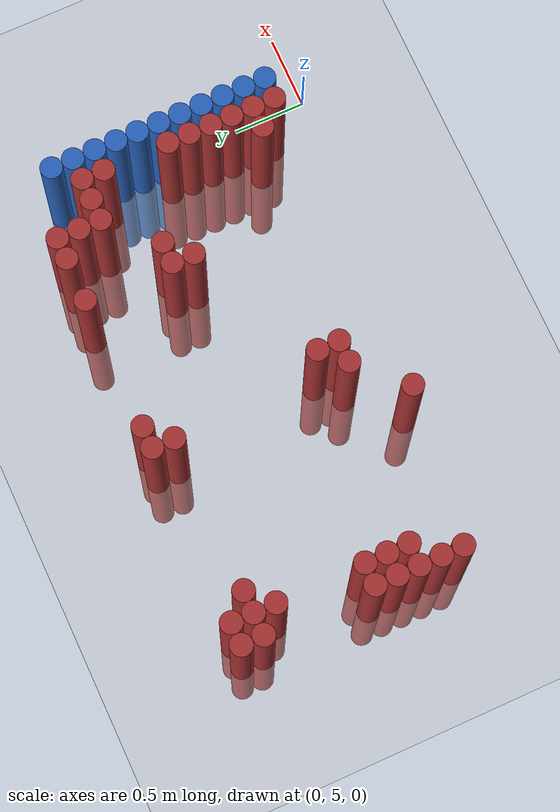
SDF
<sdf version="1.6">
 <world name="default">
  <model name="ground_plane">
   <static>1</static>
   <link name="link">
    <collision name="collision">
     <geometry><plane><normal>0 0 1</normal><size>100 100</size></plane></geometry>
     <surface><friction><ode><mu>100</mu><mu2>50</mu2></ode></friction></surface>
    </collision>
    <visual name="visual">
     <cast_shadows>0</cast_shadows>
     <geometry><plane><normal>0 0 1</normal><size>100 100</size></plane></geometry>
     <material>
      <script><uri>file://media/materials/scripts/gazebo.material</uri><name>Gazebo/Grey</name></script>
     </material>
    </visual>
   </link>
  </model>
  <model name="unit_cylinder_149">
   <static>1</static>
   <pose>-3.375000 5.475000 0.000000 0.000000 0.000000 0.000000</pose>
   <link name="link">
    <inertial>
     <mass>1</mass>
     <inertia><ixx>0.145833</ixx><ixy>0</ixy><ixz>0</ixz><iyy>0.145833</iyy><iyz>0</iyz><izz>0.125</izz></inertia>
    </inertial>
    <collision name="collision">
     <geometry><cylinder><radius>0.075000</radius><length>2</length></cylinder></geometry>
    </collision>
    <visual name="visual">
     <geometry><cylinder><radius>0.075000</radius><length>2</length></cylinder></geometry>
     <material>
      <ambient>0.648000 0.192000 0.192000 1</ambient>
      <diffuse>0.648000 0.192000 0.192000 1</diffuse>
     </material>
     <material>
      <script><name>Gazebo/Grey</name><uri>file://media/materials/scripts/gazebo.material</uri></script>
     </material>
    </visual>
   </link>
  </model>
  <model name="unit_cylinder_150">
   <static>1</static>
   <pose>-3.375000 5.625000 0.000000 0.000000 0.000000 0.000000</pose>
   <link name="link">
    <inertial>
     <mass>1</mass>
     <inertia><ixx>0.145833</ixx><ixy>0</ixy><ixz>0</ixz><iyy>0.145833</iyy><iyz>0</iyz><izz>0.125</izz></inertia>
    </inertial>
    <collision name="collision">
     <geometry><cylinder><radius>0.075000</radius><length>2</length></cylinder></geometry>
    </collision>
    <visual name="visual">
     <geometry><cylinder><radius>0.075000</radius><length>2</length></cylinder></geometry>
     <material>
      <ambient>0.648000 0.192000 0.192000 1</ambient>
      <diffuse>0.648000 0.192000 0.192000 1</diffuse>
     </material>
     <material>
      <script><name>Gazebo/Grey</name><uri>file://media/materials/scripts/gazebo.material</uri></script>
     </material>
    </visual>
   </link>
  </model>
  <model name="unit_cylinder_151">
   <static>1</static>
   <pose>-3.375000 5.775000 0.000000 0.000000 0.000000 0.000000</pose>
   <link name="link">
    <inertial>
     <mass>1</mass>
     <inertia><ixx>0.145833</ixx><ixy>0</ixy><ixz>0</ixz><iyy>0.145833</iyy><iyz>0</iyz><izz>0.125</izz></inertia>
    </inertial>
    <collision name="collision">
     <geometry><cylinder><radius>0.075000</radius><length>2</length></cylinder></geometry>
    </collision>
    <visual name="visual">
     <geometry><cylinder><radius>0.075000</radius><length>2</length></cylinder></geometry>
     <material>
      <ambient>0.648000 0.192000 0.192000 1</ambient>
      <diffuse>0.648000 0.192000 0.192000 1</diffuse>
     </material>
     <material>
      <script><name>Gazebo/Grey</name><uri>file://media/materials/scripts/gazebo.material</uri></script>
     </material>
    </visual>
   </link>
  </model>
  <model name="unit_cylinder_152">
   <static>1</static>
   <pose>-3.375000 5.925000 0.000000 0.000000 0.000000 0.000000</pose>
   <link name="link">
    <inertial>
     <mass>1</mass>
     <inertia><ixx>0.145833</ixx><ixy>0</ixy><ixz>0</ixz><iyy>0.145833</iyy><iyz>0</iyz><izz>0.125</izz></inertia>
    </inertial>
    <collision name="collision">
     <geometry><cylinder><radius>0.075000</radius><length>2</length></cylinder></geometry>
    </collision>
    <visual name="visual">
     <geometry><cylinder><radius>0.075000</radius><length>2</length></cylinder></geometry>
     <material>
      <ambient>0.648000 0.192000 0.192000 1</ambient>
      <diffuse>0.648000 0.192000 0.192000 1</diffuse>
     </material>
     <material>
      <script><name>Gazebo/Grey</name><uri>file://media/materials/scripts/gazebo.material</uri></script>
     </material>
    </visual>
   </link>
  </model>
  <model name="unit_cylinder_153">
   <static>1</static>
   <pose>-3.375000 6.075000 0.000000 0.000000 0.000000 0.000000</pose>
   <link name="link">
    <inertial>
     <mass>1</mass>
     <inertia><ixx>0.145833</ixx><ixy>0</ixy><ixz>0</ixz><iyy>0.145833</iyy><iyz>0</iyz><izz>0.125</izz></inertia>
    </inertial>
    <collision name="collision">
     <geometry><cylinder><radius>0.075000</radius><length>2</length></cylinder></geometry>
    </collision>
    <visual name="visual">
     <geometry><cylinder><radius>0.075000</radius><length>2</length></cylinder></geometry>
     <material>
      <ambient>0.648000 0.192000 0.192000 1</ambient>
      <diffuse>0.648000 0.192000 0.192000 1</diffuse>
     </material>
     <material>
      <script><name>Gazebo/Grey</name><uri>file://media/materials/scripts/gazebo.material</uri></script>
     </material>
    </visual>
   </link>
  </model>
  <model name="unit_cylinder_154">
   <static>1</static>
   <pose>-3.375000 6.825000 0.000000 0.000000 0.000000 0.000000</pose>
   <link name="link">
    <inertial>
     <mass>1</mass>
     <inertia><ixx>0.145833</ixx><ixy>0</ixy><ixz>0</ixz><iyy>0.145833</iyy><iyz>0</iyz><izz>0.125</izz></inertia>
    </inertial>
    <collision name="collision">
     <geometry><cylinder><radius>0.075000</radius><length>2</length></cylinder></geometry>
    </collision>
    <visual name="visual">
     <geometry><cylinder><radius>0.075000</radius><length>2</length></cylinder></geometry>
     <material>
      <ambient>0.648000 0.192000 0.192000 1</ambient>
      <diffuse>0.648000 0.192000 0.192000 1</diffuse>
     </material>
     <material>
      <script><name>Gazebo/Grey</name><uri>file://media/materials/scripts/gazebo.material</uri></script>
     </material>
    </visual>
   </link>
  </model>
  <model name="unit_cylinder_155">
   <static>1</static>
   <pose>-3.375000 6.975000 0.000000 0.000000 0.000000 0.000000</pose>
   <link name="link">
    <inertial>
     <mass>1</mass>
     <inertia><ixx>0.145833</ixx><ixy>0</ixy><ixz>0</ixz><iyy>0.145833</iyy><iyz>0</iyz><izz>0.125</izz></inertia>
    </inertial>
    <collision name="collision">
     <geometry><cylinder><radius>0.075000</radius><length>2</length></cylinder></geometry>
    </collision>
    <visual name="visual">
     <geometry><cylinder><radius>0.075000</radius><length>2</length></cylinder></geometry>
     <material>
      <ambient>0.648000 0.192000 0.192000 1</ambient>
      <diffuse>0.648000 0.192000 0.192000 1</diffuse>
     </material>
     <material>
      <script><name>Gazebo/Grey</name><uri>file://media/materials/scripts/gazebo.material</uri></script>
     </material>
    </visual>
   </link>
  </model>
  <model name="unit_cylinder_159">
   <static>1</static>
   <pose>-3.225000 5.775000 0.000000 0.000000 0.000000 0.000000</pose>
   <link name="link">
    <inertial>
     <mass>1</mass>
     <inertia><ixx>0.145833</ixx><ixy>0</ixy><ixz>0</ixz><iyy>0.145833</iyy><iyz>0</iyz><izz>0.125</izz></inertia>
    </inertial>
    <collision name="collision">
     <geometry><cylinder><radius>0.075000</radius><length>2</length></cylinder></geometry>
    </collision>
    <visual name="visual">
     <geometry><cylinder><radius>0.075000</radius><length>2</length></cylinder></geometry>
     <material>
      <ambient>0.648000 0.192000 0.192000 1</ambient>
      <diffuse>0.648000 0.192000 0.192000 1</diffuse>
     </material>
     <material>
      <script><name>Gazebo/Grey</name><uri>file://media/materials/scripts/gazebo.material</uri></script>
     </material>
    </visual>
   </link>
  </model>
  <model name="unit_cylinder_160">
   <static>1</static>
   <pose>-3.225000 5.925000 0.000000 0.000000 0.000000 0.000000</pose>
   <link name="link">
    <inertial>
     <mass>1</mass>
     <inertia><ixx>0.145833</ixx><ixy>0</ixy><ixz>0</ixz><iyy>0.145833</iyy><iyz>0</iyz><izz>0.125</izz></inertia>
    </inertial>
    <collision name="collision">
     <geometry><cylinder><radius>0.075000</radius><length>2</length></cylinder></geometry>
    </collision>
    <visual name="visual">
     <geometry><cylinder><radius>0.075000</radius><length>2</length></cylinder></geometry>
     <material>
      <ambient>0.648000 0.192000 0.192000 1</ambient>
      <diffuse>0.648000 0.192000 0.192000 1</diffuse>
     </material>
     <material>
      <script><name>Gazebo/Grey</name><uri>file://media/materials/scripts/gazebo.material</uri></script>
     </material>
    </visual>
   </link>
  </model>
  <model name="unit_cylinder_161">
   <static>1</static>
   <pose>-3.225000 6.075000 0.000000 0.000000 0.000000 0.000000</pose>
   <link name="link">
    <inertial>
     <mass>1</mass>
     <inertia><ixx>0.145833</ixx><ixy>0</ixy><ixz>0</ixz><iyy>0.145833</iyy><iyz>0</iyz><izz>0.125</izz></inertia>
    </inertial>
    <collision name="collision">
     <geometry><cylinder><radius>0.075000</radius><length>2</length></cylinder></geometry>
    </collision>
    <visual name="visual">
     <geometry><cylinder><radius>0.075000</radius><length>2</length></cylinder></geometry>
     <material>
      <ambient>0.648000 0.192000 0.192000 1</ambient>
      <diffuse>0.648000 0.192000 0.192000 1</diffuse>
     </material>
     <material>
      <script><name>Gazebo/Grey</name><uri>file://media/materials/scripts/gazebo.material</uri></script>
     </material>
    </visual>
   </link>
  </model>
  <model name="unit_cylinder_162">
   <static>1</static>
   <pose>-3.225000 6.675000 0.000000 0.000000 0.000000 0.000000</pose>
   <link name="link">
    <inertial>
     <mass>1</mass>
     <inertia><ixx>0.145833</ixx><ixy>0</ixy><ixz>0</ixz><iyy>0.145833</iyy><iyz>0</iyz><izz>0.125</izz></inertia>
    </inertial>
    <collision name="collision">
     <geometry><cylinder><radius>0.075000</radius><length>2</length></cylinder></geometry>
    </collision>
    <visual name="visual">
     <geometry><cylinder><radius>0.075000</radius><length>2</length></cylinder></geometry>
     <material>
      <ambient>0.648000 0.192000 0.192000 1</ambient>
      <diffuse>0.648000 0.192000 0.192000 1</diffuse>
     </material>
     <material>
      <script><name>Gazebo/Grey</name><uri>file://media/materials/scripts/gazebo.material</uri></script>
     </material>
    </visual>
   </link>
  </model>
  <model name="unit_cylinder_163">
   <static>1</static>
   <pose>-3.225000 6.825000 0.000000 0.000000 0.000000 0.000000</pose>
   <link name="link">
    <inertial>
     <mass>1</mass>
     <inertia><ixx>0.145833</ixx><ixy>0</ixy><ixz>0</ixz><iyy>0.145833</iyy><iyz>0</iyz><izz>0.125</izz></inertia>
    </inertial>
    <collision name="collision">
     <geometry><cylinder><radius>0.075000</radius><length>2</length></cylinder></geometry>
    </collision>
    <visual name="visual">
     <geometry><cylinder><radius>0.075000</radius><length>2</length></cylinder></geometry>
     <material>
      <ambient>0.648000 0.192000 0.192000 1</ambient>
      <diffuse>0.648000 0.192000 0.192000 1</diffuse>
     </material>
     <material>
      <script><name>Gazebo/Grey</name><uri>file://media/materials/scripts/gazebo.material</uri></script>
     </material>
    </visual>
   </link>
  </model>
  <model name="unit_cylinder_164">
   <static>1</static>
   <pose>-3.225000 6.975000 0.000000 0.000000 0.000000 0.000000</pose>
   <link name="link">
    <inertial>
     <mass>1</mass>
     <inertia><ixx>0.145833</ixx><ixy>0</ixy><ixz>0</ixz><iyy>0.145833</iyy><iyz>0</iyz><izz>0.125</izz></inertia>
    </inertial>
    <collision name="collision">
     <geometry><cylinder><radius>0.075000</radius><length>2</length></cylinder></geometry>
    </collision>
    <visual name="visual">
     <geometry><cylinder><radius>0.075000</radius><length>2</length></cylinder></geometry>
     <material>
      <ambient>0.648000 0.192000 0.192000 1</ambient>
      <diffuse>0.648000 0.192000 0.192000 1</diffuse>
     </material>
     <material>
      <script><name>Gazebo/Grey</name><uri>file://media/materials/scripts/gazebo.material</uri></script>
     </material>
    </visual>
   </link>
  </model>
  <model name="unit_cylinder_166">
   <static>1</static>
   <pose>-3.075000 6.825000 0.000000 0.000000 0.000000 0.000000</pose>
   <link name="link">
    <inertial>
     <mass>1</mass>
     <inertia><ixx>0.145833</ixx><ixy>0</ixy><ixz>0</ixz><iyy>0.145833</iyy><iyz>0</iyz><izz>0.125</izz></inertia>
    </inertial>
    <collision name="collision">
     <geometry><cylinder><radius>0.075000</radius><length>2</length></cylinder></geometry>
    </collision>
    <visual name="visual">
     <geometry><cylinder><radius>0.075000</radius><length>2</length></cylinder></geometry>
     <material>
      <ambient>0.648000 0.192000 0.192000 1</ambient>
      <diffuse>0.648000 0.192000 0.192000 1</diffuse>
     </material>
     <material>
      <script><name>Gazebo/Grey</name><uri>file://media/materials/scripts/gazebo.material</uri></script>
     </material>
    </visual>
   </link>
  </model>
  <model name="unit_cylinder_168">
   <static>1</static>
   <pose>-2.325000 5.325000 0.000000 0.000000 0.000000 0.000000</pose>
   <link name="link">
    <inertial>
     <mass>1</mass>
     <inertia><ixx>0.145833</ixx><ixy>0</ixy><ixz>0</ixz><iyy>0.145833</iyy><iyz>0</iyz><izz>0.125</izz></inertia>
    </inertial>
    <collision name="collision">
     <geometry><cylinder><radius>0.075000</radius><length>2</length></cylinder></geometry>
    </collision>
    <visual name="visual">
     <geometry><cylinder><radius>0.075000</radius><length>2</length></cylinder></geometry>
     <material>
      <ambient>0.648000 0.192000 0.192000 1</ambient>
      <diffuse>0.648000 0.192000 0.192000 1</diffuse>
     </material>
     <material>
      <script><name>Gazebo/Grey</name><uri>file://media/materials/scripts/gazebo.material</uri></script>
     </material>
    </visual>
   </link>
  </model>
  <model name="unit_cylinder_170">
   <static>1</static>
   <pose>-2.025000 5.625000 0.000000 0.000000 0.000000 0.000000</pose>
   <link name="link">
    <inertial>
     <mass>1</mass>
     <inertia><ixx>0.145833</ixx><ixy>0</ixy><ixz>0</ixz><iyy>0.145833</iyy><iyz>0</iyz><izz>0.125</izz></inertia>
    </inertial>
    <collision name="collision">
     <geometry><cylinder><radius>0.075000</radius><length>2</length></cylinder></geometry>
    </collision>
    <visual name="visual">
     <geometry><cylinder><radius>0.075000</radius><length>2</length></cylinder></geometry>
     <material>
      <ambient>0.648000 0.192000 0.192000 1</ambient>
      <diffuse>0.648000 0.192000 0.192000 1</diffuse>
     </material>
     <material>
      <script><name>Gazebo/Grey</name><uri>file://media/materials/scripts/gazebo.material</uri></script>
     </material>
    </visual>
   </link>
  </model>
  <model name="unit_cylinder_171">
   <static>1</static>
   <pose>-2.025000 6.825000 0.000000 0.000000 0.000000 0.000000</pose>
   <link name="link">
    <inertial>
     <mass>1</mass>
     <inertia><ixx>0.145833</ixx><ixy>0</ixy><ixz>0</ixz><iyy>0.145833</iyy><iyz>0</iyz><izz>0.125</izz></inertia>
    </inertial>
    <collision name="collision">
     <geometry><cylinder><radius>0.075000</radius><length>2</length></cylinder></geometry>
    </collision>
    <visual name="visual">
     <geometry><cylinder><radius>0.075000</radius><length>2</length></cylinder></geometry>
     <material>
      <ambient>0.648000 0.192000 0.192000 1</ambient>
      <diffuse>0.648000 0.192000 0.192000 1</diffuse>
     </material>
     <material>
      <script><name>Gazebo/Grey</name><uri>file://media/materials/scripts/gazebo.material</uri></script>
     </material>
    </visual>
   </link>
  </model>
  <model name="unit_cylinder_172">
   <static>1</static>
   <pose>-2.025000 6.975000 0.000000 0.000000 0.000000 0.000000</pose>
   <link name="link">
    <inertial>
     <mass>1</mass>
     <inertia><ixx>0.145833</ixx><ixy>0</ixy><ixz>0</ixz><iyy>0.145833</iyy><iyz>0</iyz><izz>0.125</izz></inertia>
    </inertial>
    <collision name="collision">
     <geometry><cylinder><radius>0.075000</radius><length>2</length></cylinder></geometry>
    </collision>
    <visual name="visual">
     <geometry><cylinder><radius>0.075000</radius><length>2</length></cylinder></geometry>
     <material>
      <ambient>0.648000 0.192000 0.192000 1</ambient>
      <diffuse>0.648000 0.192000 0.192000 1</diffuse>
     </material>
     <material>
      <script><name>Gazebo/Grey</name><uri>file://media/materials/scripts/gazebo.material</uri></script>
     </material>
    </visual>
   </link>
  </model>
  <model name="unit_cylinder_173">
   <static>1</static>
   <pose>-1.875000 5.625000 0.000000 0.000000 0.000000 0.000000</pose>
   <link name="link">
    <inertial>
     <mass>1</mass>
     <inertia><ixx>0.145833</ixx><ixy>0</ixy><ixz>0</ixz><iyy>0.145833</iyy><iyz>0</iyz><izz>0.125</izz></inertia>
    </inertial>
    <collision name="collision">
     <geometry><cylinder><radius>0.075000</radius><length>2</length></cylinder></geometry>
    </collision>
    <visual name="visual">
     <geometry><cylinder><radius>0.075000</radius><length>2</length></cylinder></geometry>
     <material>
      <ambient>0.648000 0.192000 0.192000 1</ambient>
      <diffuse>0.648000 0.192000 0.192000 1</diffuse>
     </material>
     <material>
      <script><name>Gazebo/Grey</name><uri>file://media/materials/scripts/gazebo.material</uri></script>
     </material>
    </visual>
   </link>
  </model>
  <model name="unit_cylinder_174">
   <static>1</static>
   <pose>-1.875000 5.775000 0.000000 0.000000 0.000000 0.000000</pose>
   <link name="link">
    <inertial>
     <mass>1</mass>
     <inertia><ixx>0.145833</ixx><ixy>0</ixy><ixz>0</ixz><iyy>0.145833</iyy><iyz>0</iyz><izz>0.125</izz></inertia>
    </inertial>
    <collision name="collision">
     <geometry><cylinder><radius>0.075000</radius><length>2</length></cylinder></geometry>
    </collision>
    <visual name="visual">
     <geometry><cylinder><radius>0.075000</radius><length>2</length></cylinder></geometry>
     <material>
      <ambient>0.648000 0.192000 0.192000 1</ambient>
      <diffuse>0.648000 0.192000 0.192000 1</diffuse>
     </material>
     <material>
      <script><name>Gazebo/Grey</name><uri>file://media/materials/scripts/gazebo.material</uri></script>
     </material>
    </visual>
   </link>
  </model>
  <model name="unit_cylinder_175">
   <static>1</static>
   <pose>-1.875000 6.975000 0.000000 0.000000 0.000000 0.000000</pose>
   <link name="link">
    <inertial>
     <mass>1</mass>
     <inertia><ixx>0.145833</ixx><ixy>0</ixy><ixz>0</ixz><iyy>0.145833</iyy><iyz>0</iyz><izz>0.125</izz></inertia>
    </inertial>
    <collision name="collision">
     <geometry><cylinder><radius>0.075000</radius><length>2</length></cylinder></geometry>
    </collision>
    <visual name="visual">
     <geometry><cylinder><radius>0.075000</radius><length>2</length></cylinder></geometry>
     <material>
      <ambient>0.648000 0.192000 0.192000 1</ambient>
      <diffuse>0.648000 0.192000 0.192000 1</diffuse>
     </material>
     <material>
      <script><name>Gazebo/Grey</name><uri>file://media/materials/scripts/gazebo.material</uri></script>
     </material>
    </visual>
   </link>
  </model>
  <model name="unit_cylinder_180">
   <static>1</static>
   <pose>-0.975000 6.225000 0.000000 0.000000 0.000000 0.000000</pose>
   <link name="link">
    <inertial>
     <mass>1</mass>
     <inertia><ixx>0.145833</ixx><ixy>0</ixy><ixz>0</ixz><iyy>0.145833</iyy><iyz>0</iyz><izz>0.125</izz></inertia>
    </inertial>
    <collision name="collision">
     <geometry><cylinder><radius>0.075000</radius><length>2</length></cylinder></geometry>
    </collision>
    <visual name="visual">
     <geometry><cylinder><radius>0.075000</radius><length>2</length></cylinder></geometry>
     <material>
      <ambient>0.648000 0.192000 0.192000 1</ambient>
      <diffuse>0.648000 0.192000 0.192000 1</diffuse>
     </material>
     <material>
      <script><name>Gazebo/Grey</name><uri>file://media/materials/scripts/gazebo.material</uri></script>
     </material>
    </visual>
   </link>
  </model>
  <model name="unit_cylinder_181">
   <static>1</static>
   <pose>-0.975000 6.375000 0.000000 0.000000 0.000000 0.000000</pose>
   <link name="link">
    <inertial>
     <mass>1</mass>
     <inertia><ixx>0.145833</ixx><ixy>0</ixy><ixz>0</ixz><iyy>0.145833</iyy><iyz>0</iyz><izz>0.125</izz></inertia>
    </inertial>
    <collision name="collision">
     <geometry><cylinder><radius>0.075000</radius><length>2</length></cylinder></geometry>
    </collision>
    <visual name="visual">
     <geometry><cylinder><radius>0.075000</radius><length>2</length></cylinder></geometry>
     <material>
      <ambient>0.648000 0.192000 0.192000 1</ambient>
      <diffuse>0.648000 0.192000 0.192000 1</diffuse>
     </material>
     <material>
      <script><name>Gazebo/Grey</name><uri>file://media/materials/scripts/gazebo.material</uri></script>
     </material>
    </visual>
   </link>
  </model>
  <model name="unit_cylinder_182">
   <static>1</static>
   <pose>-0.975000 6.975000 0.000000 0.000000 0.000000 0.000000</pose>
   <link name="link">
    <inertial>
     <mass>1</mass>
     <inertia><ixx>0.145833</ixx><ixy>0</ixy><ixz>0</ixz><iyy>0.145833</iyy><iyz>0</iyz><izz>0.125</izz></inertia>
    </inertial>
    <collision name="collision">
     <geometry><cylinder><radius>0.075000</radius><length>2</length></cylinder></geometry>
    </collision>
    <visual name="visual">
     <geometry><cylinder><radius>0.075000</radius><length>2</length></cylinder></geometry>
     <material>
      <ambient>0.648000 0.192000 0.192000 1</ambient>
      <diffuse>0.648000 0.192000 0.192000 1</diffuse>
     </material>
     <material>
      <script><name>Gazebo/Grey</name><uri>file://media/materials/scripts/gazebo.material</uri></script>
     </material>
    </visual>
   </link>
  </model>
  <model name="unit_cylinder_183">
   <static>1</static>
   <pose>-0.825000 6.375000 0.000000 0.000000 0.000000 0.000000</pose>
   <link name="link">
    <inertial>
     <mass>1</mass>
     <inertia><ixx>0.145833</ixx><ixy>0</ixy><ixz>0</ixz><iyy>0.145833</iyy><iyz>0</iyz><izz>0.125</izz></inertia>
    </inertial>
    <collision name="collision">
     <geometry><cylinder><radius>0.075000</radius><length>2</length></cylinder></geometry>
    </collision>
    <visual name="visual">
     <geometry><cylinder><radius>0.075000</radius><length>2</length></cylinder></geometry>
     <material>
      <ambient>0.648000 0.192000 0.192000 1</ambient>
      <diffuse>0.648000 0.192000 0.192000 1</diffuse>
     </material>
     <material>
      <script><name>Gazebo/Grey</name><uri>file://media/materials/scripts/gazebo.material</uri></script>
     </material>
    </visual>
   </link>
  </model>
  <model name="unit_cylinder_185">
   <static>1</static>
   <pose>-0.675000 6.975000 0.000000 0.000000 0.000000 0.000000</pose>
   <link name="link">
    <inertial>
     <mass>1</mass>
     <inertia><ixx>0.145833</ixx><ixy>0</ixy><ixz>0</ixz><iyy>0.145833</iyy><iyz>0</iyz><izz>0.125</izz></inertia>
    </inertial>
    <collision name="collision">
     <geometry><cylinder><radius>0.075000</radius><length>2</length></cylinder></geometry>
    </collision>
    <visual name="visual">
     <geometry><cylinder><radius>0.075000</radius><length>2</length></cylinder></geometry>
     <material>
      <ambient>0.648000 0.192000 0.192000 1</ambient>
      <diffuse>0.648000 0.192000 0.192000 1</diffuse>
     </material>
     <material>
      <script><name>Gazebo/Grey</name><uri>file://media/materials/scripts/gazebo.material</uri></script>
     </material>
    </visual>
   </link>
  </model>
  <model name="unit_cylinder_189">
   <static>1</static>
   <pose>-0.525000 6.675000 0.000000 0.000000 0.000000 0.000000</pose>
   <link name="link">
    <inertial>
     <mass>1</mass>
     <inertia><ixx>0.145833</ixx><ixy>0</ixy><ixz>0</ixz><iyy>0.145833</iyy><iyz>0</iyz><izz>0.125</izz></inertia>
    </inertial>
    <collision name="collision">
     <geometry><cylinder><radius>0.075000</radius><length>2</length></cylinder></geometry>
    </collision>
    <visual name="visual">
     <geometry><cylinder><radius>0.075000</radius><length>2</length></cylinder></geometry>
     <material>
      <ambient>0.648000 0.192000 0.192000 1</ambient>
      <diffuse>0.648000 0.192000 0.192000 1</diffuse>
     </material>
     <material>
      <script><name>Gazebo/Grey</name><uri>file://media/materials/scripts/gazebo.material</uri></script>
     </material>
    </visual>
   </link>
  </model>
  <model name="unit_cylinder_190">
   <static>1</static>
   <pose>-0.525000 6.825000 0.000000 0.000000 0.000000 0.000000</pose>
   <link name="link">
    <inertial>
     <mass>1</mass>
     <inertia><ixx>0.145833</ixx><ixy>0</ixy><ixz>0</ixz><iyy>0.145833</iyy><iyz>0</iyz><izz>0.125</izz></inertia>
    </inertial>
    <collision name="collision">
     <geometry><cylinder><radius>0.075000</radius><length>2</length></cylinder></geometry>
    </collision>
    <visual name="visual">
     <geometry><cylinder><radius>0.075000</radius><length>2</length></cylinder></geometry>
     <material>
      <ambient>0.648000 0.192000 0.192000 1</ambient>
      <diffuse>0.648000 0.192000 0.192000 1</diffuse>
     </material>
     <material>
      <script><name>Gazebo/Grey</name><uri>file://media/materials/scripts/gazebo.material</uri></script>
     </material>
    </visual>
   </link>
  </model>
  <model name="unit_cylinder_191">
   <static>1</static>
   <pose>-0.525000 6.975000 0.000000 0.000000 0.000000 0.000000</pose>
   <link name="link">
    <inertial>
     <mass>1</mass>
     <inertia><ixx>0.145833</ixx><ixy>0</ixy><ixz>0</ixz><iyy>0.145833</iyy><iyz>0</iyz><izz>0.125</izz></inertia>
    </inertial>
    <collision name="collision">
     <geometry><cylinder><radius>0.075000</radius><length>2</length></cylinder></geometry>
    </collision>
    <visual name="visual">
     <geometry><cylinder><radius>0.075000</radius><length>2</length></cylinder></geometry>
     <material>
      <ambient>0.648000 0.192000 0.192000 1</ambient>
      <diffuse>0.648000 0.192000 0.192000 1</diffuse>
     </material>
     <material>
      <script><name>Gazebo/Grey</name><uri>file://media/materials/scripts/gazebo.material</uri></script>
     </material>
    </visual>
   </link>
  </model>
  <model name="unit_cylinder_195">
   <static>1</static>
   <pose>-0.375000 5.475000 0.000000 0.000000 0.000000 0.000000</pose>
   <link name="link">
    <inertial>
     <mass>1</mass>
     <inertia><ixx>0.145833</ixx><ixy>0</ixy><ixz>0</ixz><iyy>0.145833</iyy><iyz>0</iyz><izz>0.125</izz></inertia>
    </inertial>
    <collision name="collision">
     <geometry><cylinder><radius>0.075000</radius><length>2</length></cylinder></geometry>
    </collision>
    <visual name="visual">
     <geometry><cylinder><radius>0.075000</radius><length>2</length></cylinder></geometry>
     <material>
      <ambient>0.648000 0.192000 0.192000 1</ambient>
      <diffuse>0.648000 0.192000 0.192000 1</diffuse>
     </material>
     <material>
      <script><name>Gazebo/Grey</name><uri>file://media/materials/scripts/gazebo.material</uri></script>
     </material>
    </visual>
   </link>
  </model>
  <model name="unit_cylinder_196">
   <static>1</static>
   <pose>-0.375000 6.675000 0.000000 0.000000 0.000000 0.000000</pose>
   <link name="link">
    <inertial>
     <mass>1</mass>
     <inertia><ixx>0.145833</ixx><ixy>0</ixy><ixz>0</ixz><iyy>0.145833</iyy><iyz>0</iyz><izz>0.125</izz></inertia>
    </inertial>
    <collision name="collision">
     <geometry><cylinder><radius>0.075000</radius><length>2</length></cylinder></geometry>
    </collision>
    <visual name="visual">
     <geometry><cylinder><radius>0.075000</radius><length>2</length></cylinder></geometry>
     <material>
      <ambient>0.648000 0.192000 0.192000 1</ambient>
      <diffuse>0.648000 0.192000 0.192000 1</diffuse>
     </material>
     <material>
      <script><name>Gazebo/Grey</name><uri>file://media/materials/scripts/gazebo.material</uri></script>
     </material>
    </visual>
   </link>
  </model>
  <model name="unit_cylinder_202">
   <static>1</static>
   <pose>-0.225000 5.325000 0.000000 0.000000 0.000000 0.000000</pose>
   <link name="link">
    <inertial>
     <mass>1</mass>
     <inertia><ixx>0.145833</ixx><ixy>0</ixy><ixz>0</ixz><iyy>0.145833</iyy><iyz>0</iyz><izz>0.125</izz></inertia>
    </inertial>
    <collision name="collision">
     <geometry><cylinder><radius>0.075000</radius><length>2</length></cylinder></geometry>
    </collision>
    <visual name="visual">
     <geometry><cylinder><radius>0.075000</radius><length>2</length></cylinder></geometry>
     <material>
      <ambient>0.648000 0.192000 0.192000 1</ambient>
      <diffuse>0.648000 0.192000 0.192000 1</diffuse>
     </material>
     <material>
      <script><name>Gazebo/Grey</name><uri>file://media/materials/scripts/gazebo.material</uri></script>
     </material>
    </visual>
   </link>
  </model>
  <model name="unit_cylinder_203">
   <static>1</static>
   <pose>-0.225000 5.475000 0.000000 0.000000 0.000000 0.000000</pose>
   <link name="link">
    <inertial>
     <mass>1</mass>
     <inertia><ixx>0.145833</ixx><ixy>0</ixy><ixz>0</ixz><iyy>0.145833</iyy><iyz>0</iyz><izz>0.125</izz></inertia>
    </inertial>
    <collision name="collision">
     <geometry><cylinder><radius>0.075000</radius><length>2</length></cylinder></geometry>
    </collision>
    <visual name="visual">
     <geometry><cylinder><radius>0.075000</radius><length>2</length></cylinder></geometry>
     <material>
      <ambient>0.648000 0.192000 0.192000 1</ambient>
      <diffuse>0.648000 0.192000 0.192000 1</diffuse>
     </material>
     <material>
      <script><name>Gazebo/Grey</name><uri>file://media/materials/scripts/gazebo.material</uri></script>
     </material>
    </visual>
   </link>
  </model>
  <model name="unit_cylinder_204">
   <static>1</static>
   <pose>-0.225000 5.625000 0.000000 0.000000 0.000000 0.000000</pose>
   <link name="link">
    <inertial>
     <mass>1</mass>
     <inertia><ixx>0.145833</ixx><ixy>0</ixy><ixz>0</ixz><iyy>0.145833</iyy><iyz>0</iyz><izz>0.125</izz></inertia>
    </inertial>
    <collision name="collision">
     <geometry><cylinder><radius>0.075000</radius><length>2</length></cylinder></geometry>
    </collision>
    <visual name="visual">
     <geometry><cylinder><radius>0.075000</radius><length>2</length></cylinder></geometry>
     <material>
      <ambient>0.648000 0.192000 0.192000 1</ambient>
      <diffuse>0.648000 0.192000 0.192000 1</diffuse>
     </material>
     <material>
      <script><name>Gazebo/Grey</name><uri>file://media/materials/scripts/gazebo.material</uri></script>
     </material>
    </visual>
   </link>
  </model>
  <model name="unit_cylinder_205">
   <static>1</static>
   <pose>-0.225000 5.775000 0.000000 0.000000 0.000000 0.000000</pose>
   <link name="link">
    <inertial>
     <mass>1</mass>
     <inertia><ixx>0.145833</ixx><ixy>0</ixy><ixz>0</ixz><iyy>0.145833</iyy><iyz>0</iyz><izz>0.125</izz></inertia>
    </inertial>
    <collision name="collision">
     <geometry><cylinder><radius>0.075000</radius><length>2</length></cylinder></geometry>
    </collision>
    <visual name="visual">
     <geometry><cylinder><radius>0.075000</radius><length>2</length></cylinder></geometry>
     <material>
      <ambient>0.648000 0.192000 0.192000 1</ambient>
      <diffuse>0.648000 0.192000 0.192000 1</diffuse>
     </material>
     <material>
      <script><name>Gazebo/Grey</name><uri>file://media/materials/scripts/gazebo.material</uri></script>
     </material>
    </visual>
   </link>
  </model>
  <model name="unit_cylinder_206">
   <static>1</static>
   <pose>-0.225000 5.925000 0.000000 0.000000 0.000000 0.000000</pose>
   <link name="link">
    <inertial>
     <mass>1</mass>
     <inertia><ixx>0.145833</ixx><ixy>0</ixy><ixz>0</ixz><iyy>0.145833</iyy><iyz>0</iyz><izz>0.125</izz></inertia>
    </inertial>
    <collision name="collision">
     <geometry><cylinder><radius>0.075000</radius><length>2</length></cylinder></geometry>
    </collision>
    <visual name="visual">
     <geometry><cylinder><radius>0.075000</radius><length>2</length></cylinder></geometry>
     <material>
      <ambient>0.648000 0.192000 0.192000 1</ambient>
      <diffuse>0.648000 0.192000 0.192000 1</diffuse>
     </material>
     <material>
      <script><name>Gazebo/Grey</name><uri>file://media/materials/scripts/gazebo.material</uri></script>
     </material>
    </visual>
   </link>
  </model>
  <model name="unit_cylinder_207">
   <static>1</static>
   <pose>-0.225000 6.075000 0.000000 0.000000 0.000000 0.000000</pose>
   <link name="link">
    <inertial>
     <mass>1</mass>
     <inertia><ixx>0.145833</ixx><ixy>0</ixy><ixz>0</ixz><iyy>0.145833</iyy><iyz>0</iyz><izz>0.125</izz></inertia>
    </inertial>
    <collision name="collision">
     <geometry><cylinder><radius>0.075000</radius><length>2</length></cylinder></geometry>
    </collision>
    <visual name="visual">
     <geometry><cylinder><radius>0.075000</radius><length>2</length></cylinder></geometry>
     <material>
      <ambient>0.648000 0.192000 0.192000 1</ambient>
      <diffuse>0.648000 0.192000 0.192000 1</diffuse>
     </material>
     <material>
      <script><name>Gazebo/Grey</name><uri>file://media/materials/scripts/gazebo.material</uri></script>
     </material>
    </visual>
   </link>
  </model>
  <model name="unit_cylinder_208">
   <static>1</static>
   <pose>-0.225000 6.525000 0.000000 0.000000 0.000000 0.000000</pose>
   <link name="link">
    <inertial>
     <mass>1</mass>
     <inertia><ixx>0.145833</ixx><ixy>0</ixy><ixz>0</ixz><iyy>0.145833</iyy><iyz>0</iyz><izz>0.125</izz></inertia>
    </inertial>
    <collision name="collision">
     <geometry><cylinder><radius>0.075000</radius><length>2</length></cylinder></geometry>
    </collision>
    <visual name="visual">
     <geometry><cylinder><radius>0.075000</radius><length>2</length></cylinder></geometry>
     <material>
      <ambient>0.648000 0.192000 0.192000 1</ambient>
      <diffuse>0.648000 0.192000 0.192000 1</diffuse>
     </material>
     <material>
      <script><name>Gazebo/Grey</name><uri>file://media/materials/scripts/gazebo.material</uri></script>
     </material>
    </visual>
   </link>
  </model>
  <model name="unit_cylinder_209">
   <static>1</static>
   <pose>-0.225000 6.675000 0.000000 0.000000 0.000000 0.000000</pose>
   <link name="link">
    <inertial>
     <mass>1</mass>
     <inertia><ixx>0.145833</ixx><ixy>0</ixy><ixz>0</ixz><iyy>0.145833</iyy><iyz>0</iyz><izz>0.125</izz></inertia>
    </inertial>
    <collision name="collision">
     <geometry><cylinder><radius>0.075000</radius><length>2</length></cylinder></geometry>
    </collision>
    <visual name="visual">
     <geometry><cylinder><radius>0.075000</radius><length>2</length></cylinder></geometry>
     <material>
      <ambient>0.648000 0.192000 0.192000 1</ambient>
      <diffuse>0.648000 0.192000 0.192000 1</diffuse>
     </material>
     <material>
      <script><name>Gazebo/Grey</name><uri>file://media/materials/scripts/gazebo.material</uri></script>
     </material>
    </visual>
   </link>
  </model>
  <model name="unit_cylinder_221">
   <static>1</static>
   <pose>-0.075000 5.325000 0.000000 0.000000 0.000000 0.000000</pose>
   <link name="link">
    <inertial>
     <mass>1</mass>
     <inertia><ixx>0.145833</ixx><ixy>0</ixy><ixz>0</ixz><iyy>0.145833</iyy><iyz>0</iyz><izz>0.125</izz></inertia>
    </inertial>
    <collision name="collision">
     <geometry><cylinder><radius>0.075000</radius><length>2</length></cylinder></geometry>
    </collision>
    <visual name="visual">
     <geometry><cylinder><radius>0.075000</radius><length>2</length></cylinder></geometry>
     <material>
      <ambient>0.152000 0.379000 0.720000 1</ambient>
      <diffuse>0.152000 0.379000 0.720000 1</diffuse>
     </material>
     <material>
      <script><name>Gazebo/Grey</name><uri>file://media/materials/scripts/gazebo.material</uri></script>
     </material>
    </visual>
   </link>
  </model>
  <model name="unit_cylinder_222">
   <static>1</static>
   <pose>-0.075000 5.475000 0.000000 0.000000 0.000000 0.000000</pose>
   <link name="link">
    <inertial>
     <mass>1</mass>
     <inertia><ixx>0.145833</ixx><ixy>0</ixy><ixz>0</ixz><iyy>0.145833</iyy><iyz>0</iyz><izz>0.125</izz></inertia>
    </inertial>
    <collision name="collision">
     <geometry><cylinder><radius>0.075000</radius><length>2</length></cylinder></geometry>
    </collision>
    <visual name="visual">
     <geometry><cylinder><radius>0.075000</radius><length>2</length></cylinder></geometry>
     <material>
      <ambient>0.152000 0.379000 0.720000 1</ambient>
      <diffuse>0.152000 0.379000 0.720000 1</diffuse>
     </material>
     <material>
      <script><name>Gazebo/Grey</name><uri>file://media/materials/scripts/gazebo.material</uri></script>
     </material>
    </visual>
   </link>
  </model>
  <model name="unit_cylinder_223">
   <static>1</static>
   <pose>-0.075000 5.625000 0.000000 0.000000 0.000000 0.000000</pose>
   <link name="link">
    <inertial>
     <mass>1</mass>
     <inertia><ixx>0.145833</ixx><ixy>0</ixy><ixz>0</ixz><iyy>0.145833</iyy><iyz>0</iyz><izz>0.125</izz></inertia>
    </inertial>
    <collision name="collision">
     <geometry><cylinder><radius>0.075000</radius><length>2</length></cylinder></geometry>
    </collision>
    <visual name="visual">
     <geometry><cylinder><radius>0.075000</radius><length>2</length></cylinder></geometry>
     <material>
      <ambient>0.152000 0.379000 0.720000 1</ambient>
      <diffuse>0.152000 0.379000 0.720000 1</diffuse>
     </material>
     <material>
      <script><name>Gazebo/Grey</name><uri>file://media/materials/scripts/gazebo.material</uri></script>
     </material>
    </visual>
   </link>
  </model>
  <model name="unit_cylinder_224">
   <static>1</static>
   <pose>-0.075000 5.775000 0.000000 0.000000 0.000000 0.000000</pose>
   <link name="link">
    <inertial>
     <mass>1</mass>
     <inertia><ixx>0.145833</ixx><ixy>0</ixy><ixz>0</ixz><iyy>0.145833</iyy><iyz>0</iyz><izz>0.125</izz></inertia>
    </inertial>
    <collision name="collision">
     <geometry><cylinder><radius>0.075000</radius><length>2</length></cylinder></geometry>
    </collision>
    <visual name="visual">
     <geometry><cylinder><radius>0.075000</radius><length>2</length></cylinder></geometry>
     <material>
      <ambient>0.152000 0.379000 0.720000 1</ambient>
      <diffuse>0.152000 0.379000 0.720000 1</diffuse>
     </material>
     <material>
      <script><name>Gazebo/Grey</name><uri>file://media/materials/scripts/gazebo.material</uri></script>
     </material>
    </visual>
   </link>
  </model>
  <model name="unit_cylinder_225">
   <static>1</static>
   <pose>-0.075000 5.925000 0.000000 0.000000 0.000000 0.000000</pose>
   <link name="link">
    <inertial>
     <mass>1</mass>
     <inertia><ixx>0.145833</ixx><ixy>0</ixy><ixz>0</ixz><iyy>0.145833</iyy><iyz>0</iyz><izz>0.125</izz></inertia>
    </inertial>
    <collision name="collision">
     <geometry><cylinder><radius>0.075000</radius><length>2</length></cylinder></geometry>
    </collision>
    <visual name="visual">
     <geometry><cylinder><radius>0.075000</radius><length>2</length></cylinder></geometry>
     <material>
      <ambient>0.152000 0.379000 0.720000 1</ambient>
      <diffuse>0.152000 0.379000 0.720000 1</diffuse>
     </material>
     <material>
      <script><name>Gazebo/Grey</name><uri>file://media/materials/scripts/gazebo.material</uri></script>
     </material>
    </visual>
   </link>
  </model>
  <model name="unit_cylinder_226">
   <static>1</static>
   <pose>-0.075000 6.075000 0.000000 0.000000 0.000000 0.000000</pose>
   <link name="link">
    <inertial>
     <mass>1</mass>
     <inertia><ixx>0.145833</ixx><ixy>0</ixy><ixz>0</ixz><iyy>0.145833</iyy><iyz>0</iyz><izz>0.125</izz></inertia>
    </inertial>
    <collision name="collision">
     <geometry><cylinder><radius>0.075000</radius><length>2</length></cylinder></geometry>
    </collision>
    <visual name="visual">
     <geometry><cylinder><radius>0.075000</radius><length>2</length></cylinder></geometry>
     <material>
      <ambient>0.152000 0.379000 0.720000 1</ambient>
      <diffuse>0.152000 0.379000 0.720000 1</diffuse>
     </material>
     <material>
      <script><name>Gazebo/Grey</name><uri>file://media/materials/scripts/gazebo.material</uri></script>
     </material>
    </visual>
   </link>
  </model>
  <model name="unit_cylinder_227">
   <static>1</static>
   <pose>-0.075000 6.225000 0.000000 0.000000 0.000000 0.000000</pose>
   <link name="link">
    <inertial>
     <mass>1</mass>
     <inertia><ixx>0.145833</ixx><ixy>0</ixy><ixz>0</ixz><iyy>0.145833</iyy><iyz>0</iyz><izz>0.125</izz></inertia>
    </inertial>
    <collision name="collision">
     <geometry><cylinder><radius>0.075000</radius><length>2</length></cylinder></geometry>
    </collision>
    <visual name="visual">
     <geometry><cylinder><radius>0.075000</radius><length>2</length></cylinder></geometry>
     <material>
      <ambient>0.152000 0.379000 0.720000 1</ambient>
      <diffuse>0.152000 0.379000 0.720000 1</diffuse>
     </material>
     <material>
      <script><name>Gazebo/Grey</name><uri>file://media/materials/scripts/gazebo.material</uri></script>
     </material>
    </visual>
   </link>
  </model>
  <model name="unit_cylinder_228">
   <static>1</static>
   <pose>-0.075000 6.375000 0.000000 0.000000 0.000000 0.000000</pose>
   <link name="link">
    <inertial>
     <mass>1</mass>
     <inertia><ixx>0.145833</ixx><ixy>0</ixy><ixz>0</ixz><iyy>0.145833</iyy><iyz>0</iyz><izz>0.125</izz></inertia>
    </inertial>
    <collision name="collision">
     <geometry><cylinder><radius>0.075000</radius><length>2</length></cylinder></geometry>
    </collision>
    <visual name="visual">
     <geometry><cylinder><radius>0.075000</radius><length>2</length></cylinder></geometry>
     <material>
      <ambient>0.152000 0.379000 0.720000 1</ambient>
      <diffuse>0.152000 0.379000 0.720000 1</diffuse>
     </material>
     <material>
      <script><name>Gazebo/Grey</name><uri>file://media/materials/scripts/gazebo.material</uri></script>
     </material>
    </visual>
   </link>
  </model>
  <model name="unit_cylinder_229">
   <static>1</static>
   <pose>-0.075000 6.525000 0.000000 0.000000 0.000000 0.000000</pose>
   <link name="link">
    <inertial>
     <mass>1</mass>
     <inertia><ixx>0.145833</ixx><ixy>0</ixy><ixz>0</ixz><iyy>0.145833</iyy><iyz>0</iyz><izz>0.125</izz></inertia>
    </inertial>
    <collision name="collision">
     <geometry><cylinder><radius>0.075000</radius><length>2</length></cylinder></geometry>
    </collision>
    <visual name="visual">
     <geometry><cylinder><radius>0.075000</radius><length>2</length></cylinder></geometry>
     <material>
      <ambient>0.152000 0.379000 0.720000 1</ambient>
      <diffuse>0.152000 0.379000 0.720000 1</diffuse>
     </material>
     <material>
      <script><name>Gazebo/Grey</name><uri>file://media/materials/scripts/gazebo.material</uri></script>
     </material>
    </visual>
   </link>
  </model>
  <model name="unit_cylinder_230">
   <static>1</static>
   <pose>-0.075000 6.675000 0.000000 0.000000 0.000000 0.000000</pose>
   <link name="link">
    <inertial>
     <mass>1</mass>
     <inertia><ixx>0.145833</ixx><ixy>0</ixy><ixz>0</ixz><iyy>0.145833</iyy><iyz>0</iyz><izz>0.125</izz></inertia>
    </inertial>
    <collision name="collision">
     <geometry><cylinder><radius>0.075000</radius><length>2</length></cylinder></geometry>
    </collision>
    <visual name="visual">
     <geometry><cylinder><radius>0.075000</radius><length>2</length></cylinder></geometry>
     <material>
      <ambient>0.152000 0.379000 0.720000 1</ambient>
      <diffuse>0.152000 0.379000 0.720000 1</diffuse>
     </material>
     <material>
      <script><name>Gazebo/Grey</name><uri>file://media/materials/scripts/gazebo.material</uri></script>
     </material>
    </visual>
   </link>
  </model>
  <model name="unit_cylinder_231">
   <static>1</static>
   <pose>-0.075000 6.825000 0.000000 0.000000 0.000000 0.000000</pose>
   <link name="link">
    <inertial>
     <mass>1</mass>
     <inertia><ixx>0.145833</ixx><ixy>0</ixy><ixz>0</ixz><iyy>0.145833</iyy><iyz>0</iyz><izz>0.125</izz></inertia>
    </inertial>
    <collision name="collision">
     <geometry><cylinder><radius>0.075000</radius><length>2</length></cylinder></geometry>
    </collision>
    <visual name="visual">
     <geometry><cylinder><radius>0.075000</radius><length>2</length></cylinder></geometry>
     <material>
      <ambient>0.152000 0.379000 0.720000 1</ambient>
      <diffuse>0.152000 0.379000 0.720000 1</diffuse>
     </material>
     <material>
      <script><name>Gazebo/Grey</name><uri>file://media/materials/scripts/gazebo.material</uri></script>
     </material>
    </visual>
   </link>
  </model>
 </world>
</sdf>
